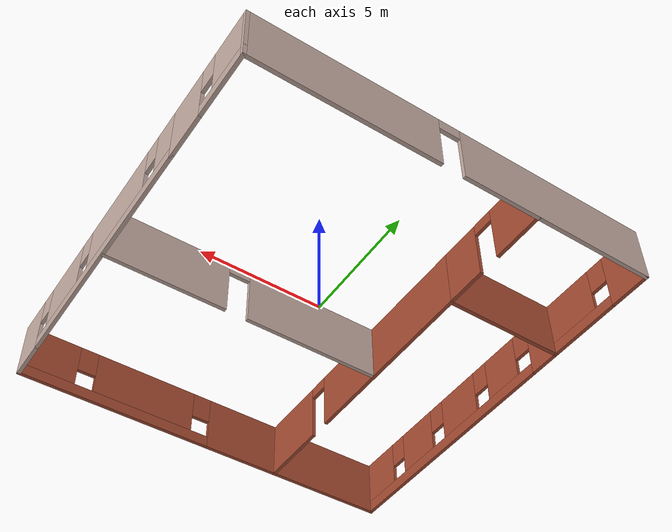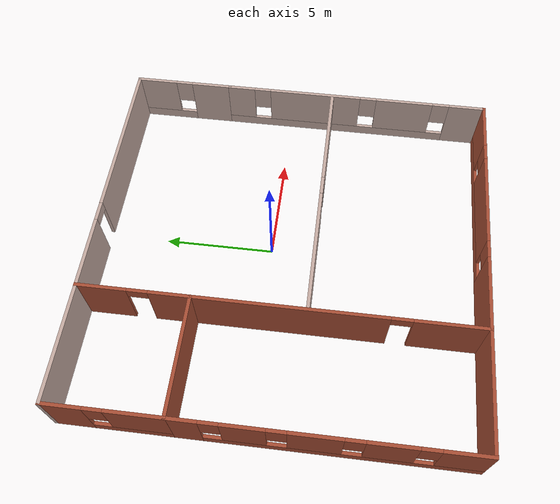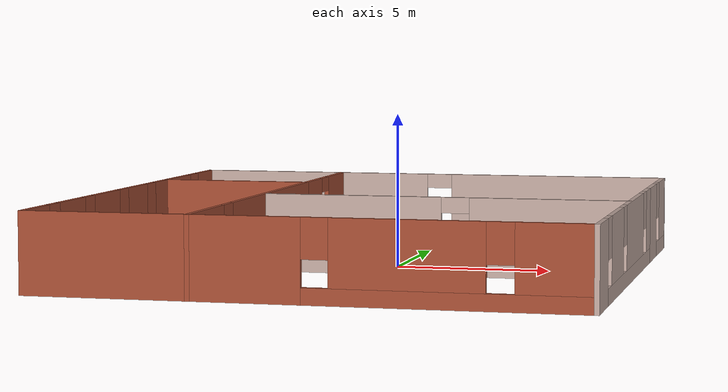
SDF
<?xml version='1.0'?>
<sdf version='1.6'>
  <model name='buildingone'>
    <pose frame=''>-0.602566 -0.893894 0 0 -0 0</pose>
    <link name='Wall_71'>
      <pose frame=''>-8.425 -2.425 0 0 0 -1.5708</pose>
      <visual name='Wall_71_Visual_0'>
        <pose frame=''>-5.57646 0 1.25 0 -0 0</pose>
        <geometry>
          <box>
            <size>1.34707 0.15 2.5</size>
          </box>
        </geometry>
        <material>
          <script>
            <uri>file://media/materials/scripts/gazebo.material</uri>
            <name>Gazebo/Bricks</name>
          </script>
          <ambient>1 1 1 1</ambient>
        </material>
        <meta>
          <layer>0</layer>
        </meta>
      </visual>
      <collision name='Wall_71_Collision_0'>
        <geometry>
          <box>
            <size>1.34707 0.15 2.5</size>
          </box>
        </geometry>
        <pose frame=''>-5.57646 0 1.25 0 -0 0</pose>
      </collision>
      <visual name='Wall_71_Visual_1'>
        <pose frame=''>0.673536 0 0.25 0 -0 0</pose>
        <geometry>
          <box>
            <size>11.1529 0.15 0.5</size>
          </box>
        </geometry>
        <material>
          <script>
            <uri>file://media/materials/scripts/gazebo.material</uri>
            <name>Gazebo/Bricks</name>
          </script>
          <ambient>1 1 1 1</ambient>
        </material>
        <meta>
          <layer>0</layer>
        </meta>
      </visual>
      <collision name='Wall_71_Collision_1'>
        <geometry>
          <box>
            <size>11.1529 0.15 0.5</size>
          </box>
        </geometry>
        <pose frame=''>0.673536 0 0.25 0 -0 0</pose>
      </collision>
      <visual name='Wall_71_Visual_2'>
        <pose frame=''>-3.21249 0 1.5 0 -0 0</pose>
        <geometry>
          <box>
            <size>1.78088 0.15 2</size>
          </box>
        </geometry>
        <material>
          <script>
            <uri>file://media/materials/scripts/gazebo.material</uri>
            <name>Gazebo/Bricks</name>
          </script>
          <ambient>1 1 1 1</ambient>
        </material>
        <meta>
          <layer>0</layer>
        </meta>
      </visual>
      <collision name='Wall_71_Collision_2'>
        <geometry>
          <box>
            <size>1.78088 0.15 2</size>
          </box>
        </geometry>
        <pose frame=''>-3.21249 0 1.5 0 -0 0</pose>
      </collision>
      <visual name='Wall_71_Visual_3'>
        <pose frame=''>-0.440981 0 1.5 0 -0 0</pose>
        <geometry>
          <box>
            <size>2.16214 0.15 2</size>
          </box>
        </geometry>
        <material>
          <script>
            <uri>file://media/materials/scripts/gazebo.material</uri>
            <name>Gazebo/Bricks</name>
          </script>
          <ambient>1 1 1 1</ambient>
        </material>
        <meta>
          <layer>0</layer>
        </meta>
      </visual>
      <collision name='Wall_71_Collision_3'>
        <geometry>
          <box>
            <size>2.16214 0.15 2</size>
          </box>
        </geometry>
        <pose frame=''>-0.440981 0 1.5 0 -0 0</pose>
      </collision>
      <visual name='Wall_71_Visual_4'>
        <pose frame=''>2.44784 0 1.5 0 -0 0</pose>
        <geometry>
          <box>
            <size>2.0155 0.15 2</size>
          </box>
        </geometry>
        <material>
          <script>
            <uri>file://media/materials/scripts/gazebo.material</uri>
            <name>Gazebo/Bricks</name>
          </script>
          <ambient>1 1 1 1</ambient>
        </material>
        <meta>
          <layer>0</layer>
        </meta>
      </visual>
      <collision name='Wall_71_Collision_4'>
        <geometry>
          <box>
            <size>2.0155 0.15 2</size>
          </box>
        </geometry>
        <pose frame=''>2.44784 0 1.5 0 -0 0</pose>
      </collision>
      <visual name='Wall_71_Visual_5'>
        <pose frame=''>5.25279 0 1.5 0 -0 0</pose>
        <geometry>
          <box>
            <size>1.99441 0.15 2</size>
          </box>
        </geometry>
        <material>
          <script>
            <uri>file://media/materials/scripts/gazebo.material</uri>
            <name>Gazebo/Bricks</name>
          </script>
          <ambient>1 1 1 1</ambient>
        </material>
        <meta>
          <layer>0</layer>
        </meta>
      </visual>
      <collision name='Wall_71_Collision_5'>
        <geometry>
          <box>
            <size>1.99441 0.15 2</size>
          </box>
        </geometry>
        <pose frame=''>5.25279 0 1.5 0 -0 0</pose>
      </collision>
      <visual name='Wall_71_Visual_6'>
        <pose frame=''>-4.50293 0 1.9 0 -0 0</pose>
        <geometry>
          <box>
            <size>0.8 0.15 1.2</size>
          </box>
        </geometry>
        <material>
          <script>
            <uri>file://media/materials/scripts/gazebo.material</uri>
            <name>Gazebo/Bricks</name>
          </script>
          <ambient>1 1 1 1</ambient>
        </material>
        <meta>
          <layer>0</layer>
        </meta>
      </visual>
      <collision name='Wall_71_Collision_6'>
        <geometry>
          <box>
            <size>0.8 0.15 1.2</size>
          </box>
        </geometry>
        <pose frame=''>-4.50293 0 1.9 0 -0 0</pose>
      </collision>
      <visual name='Wall_71_Visual_7'>
        <pose frame=''>-1.92205 0 1.9 0 -0 0</pose>
        <geometry>
          <box>
            <size>0.8 0.15 1.2</size>
          </box>
        </geometry>
        <material>
          <script>
            <uri>file://media/materials/scripts/gazebo.material</uri>
            <name>Gazebo/Bricks</name>
          </script>
          <ambient>1 1 1 1</ambient>
        </material>
        <meta>
          <layer>0</layer>
        </meta>
      </visual>
      <collision name='Wall_71_Collision_7'>
        <geometry>
          <box>
            <size>0.8 0.15 1.2</size>
          </box>
        </geometry>
        <pose frame=''>-1.92205 0 1.9 0 -0 0</pose>
      </collision>
      <visual name='Wall_71_Visual_8'>
        <pose frame=''>1.04009 0 1.9 0 -0 0</pose>
        <geometry>
          <box>
            <size>0.8 0.15 1.2</size>
          </box>
        </geometry>
        <material>
          <script>
            <uri>file://media/materials/scripts/gazebo.material</uri>
            <name>Gazebo/Bricks</name>
          </script>
          <ambient>1 1 1 1</ambient>
        </material>
        <meta>
          <layer>0</layer>
        </meta>
      </visual>
      <collision name='Wall_71_Collision_8'>
        <geometry>
          <box>
            <size>0.8 0.15 1.2</size>
          </box>
        </geometry>
        <pose frame=''>1.04009 0 1.9 0 -0 0</pose>
      </collision>
      <visual name='Wall_71_Visual_9'>
        <pose frame=''>3.85559 0 1.9 0 -0 0</pose>
        <geometry>
          <box>
            <size>0.8 0.15 1.2</size>
          </box>
        </geometry>
        <material>
          <script>
            <uri>file://media/materials/scripts/gazebo.material</uri>
            <name>Gazebo/Bricks</name>
          </script>
          <ambient>1 1 1 1</ambient>
        </material>
        <meta>
          <layer>0</layer>
        </meta>
      </visual>
      <collision name='Wall_71_Collision_9'>
        <geometry>
          <box>
            <size>0.8 0.15 1.2</size>
          </box>
        </geometry>
        <pose frame=''>3.85559 0 1.9 0 -0 0</pose>
      </collision>
    </link>
    <link name='Wall_72'>
      <pose frame=''>0 -8.6 0 0 -0 0</pose>
      <visual name='Wall_72_Visual_0'>
        <pose frame=''>-4.22455 0 1.25 0 -0 0</pose>
        <geometry>
          <box>
            <size>8.55091 0.15 2.5</size>
          </box>
        </geometry>
        <material>
          <script>
            <uri>file://media/materials/scripts/gazebo.material</uri>
            <name>Gazebo/Bricks</name>
          </script>
          <ambient>1 1 1 1</ambient>
        </material>
        <meta>
          <layer>0</layer>
        </meta>
      </visual>
      <collision name='Wall_72_Collision_0'>
        <geometry>
          <box>
            <size>8.55091 0.15 2.5</size>
          </box>
        </geometry>
        <pose frame=''>-4.22455 0 1.25 0 -0 0</pose>
      </collision>
      <visual name='Wall_72_Visual_1'>
        <pose frame=''>4.27545 0 0.25 0 -0 0</pose>
        <geometry>
          <box>
            <size>8.44909 0.15 0.5</size>
          </box>
        </geometry>
        <material>
          <script>
            <uri>file://media/materials/scripts/gazebo.material</uri>
            <name>Gazebo/Bricks</name>
          </script>
          <ambient>1 1 1 1</ambient>
        </material>
        <meta>
          <layer>0</layer>
        </meta>
      </visual>
      <collision name='Wall_72_Collision_1'>
        <geometry>
          <box>
            <size>8.44909 0.15 0.5</size>
          </box>
        </geometry>
        <pose frame=''>4.27545 0 0.25 0 -0 0</pose>
      </collision>
      <visual name='Wall_72_Visual_2'>
        <pose frame=''>3.10487 0 1.5 0 -0 0</pose>
        <geometry>
          <box>
            <size>4.50793 0.15 2</size>
          </box>
        </geometry>
        <material>
          <script>
            <uri>file://media/materials/scripts/gazebo.material</uri>
            <name>Gazebo/Bricks</name>
          </script>
          <ambient>1 1 1 1</ambient>
        </material>
        <meta>
          <layer>0</layer>
        </meta>
      </visual>
      <collision name='Wall_72_Collision_2'>
        <geometry>
          <box>
            <size>4.50793 0.15 2</size>
          </box>
        </geometry>
        <pose frame=''>3.10487 0 1.5 0 -0 0</pose>
      </collision>
      <visual name='Wall_72_Visual_3'>
        <pose frame=''>7.32942 0 1.5 0 -0 0</pose>
        <geometry>
          <box>
            <size>2.34117 0.15 2</size>
          </box>
        </geometry>
        <material>
          <script>
            <uri>file://media/materials/scripts/gazebo.material</uri>
            <name>Gazebo/Bricks</name>
          </script>
          <ambient>1 1 1 1</ambient>
        </material>
        <meta>
          <layer>0</layer>
        </meta>
      </visual>
      <collision name='Wall_72_Collision_3'>
        <geometry>
          <box>
            <size>2.34117 0.15 2</size>
          </box>
        </geometry>
        <pose frame=''>7.32942 0 1.5 0 -0 0</pose>
      </collision>
      <visual name='Wall_72_Visual_4'>
        <pose frame=''>0.450905 0 1.9 0 -0 0</pose>
        <geometry>
          <box>
            <size>0.8 0.15 1.2</size>
          </box>
        </geometry>
        <material>
          <script>
            <uri>file://media/materials/scripts/gazebo.material</uri>
            <name>Gazebo/Bricks</name>
          </script>
          <ambient>1 1 1 1</ambient>
        </material>
        <meta>
          <layer>0</layer>
        </meta>
      </visual>
      <collision name='Wall_72_Collision_4'>
        <geometry>
          <box>
            <size>0.8 0.15 1.2</size>
          </box>
        </geometry>
        <pose frame=''>0.450905 0 1.9 0 -0 0</pose>
      </collision>
      <visual name='Wall_72_Visual_5'>
        <pose frame=''>5.75883 0 1.9 0 -0 0</pose>
        <geometry>
          <box>
            <size>0.8 0.15 1.2</size>
          </box>
        </geometry>
        <material>
          <script>
            <uri>file://media/materials/scripts/gazebo.material</uri>
            <name>Gazebo/Bricks</name>
          </script>
          <ambient>1 1 1 1</ambient>
        </material>
        <meta>
          <layer>0</layer>
        </meta>
      </visual>
      <collision name='Wall_72_Collision_5'>
        <geometry>
          <box>
            <size>0.8 0.15 1.2</size>
          </box>
        </geometry>
        <pose frame=''>5.75883 0 1.9 0 -0 0</pose>
      </collision>
    </link>
    <link name='Wall_73'>
      <pose frame=''>8.425 -2.3 0 0 -0 1.5708</pose>
      <visual name='Wall_73_Visual_0'>
        <pose frame=''>-5.48571 0 1.25 0 -0 0</pose>
        <geometry>
          <box>
            <size>1.77858 0.15 2.5</size>
          </box>
        </geometry>
        <material>
          <script>
            <uri>file://media/materials/scripts/gazebo.material</uri>
            <name>Gazebo/Grey</name>
          </script>
          <ambient>0.760784 0.662745 0.627451 1</ambient>
        </material>
        <meta>
          <layer>0</layer>
        </meta>
      </visual>
      <collision name='Wall_73_Collision_0'>
        <geometry>
          <box>
            <size>1.77858 0.15 2.5</size>
          </box>
        </geometry>
        <pose frame=''>-5.48571 0 1.25 0 -0 0</pose>
      </collision>
      <visual name='Wall_73_Visual_1'>
        <pose frame=''>0.889291 0 0.25 0 -0 0</pose>
        <geometry>
          <box>
            <size>10.9714 0.15 0.5</size>
          </box>
        </geometry>
        <material>
          <script>
            <uri>file://media/materials/scripts/gazebo.material</uri>
            <name>Gazebo/Grey</name>
          </script>
          <ambient>0.760784 0.662745 0.627451 1</ambient>
        </material>
        <meta>
          <layer>0</layer>
        </meta>
      </visual>
      <collision name='Wall_73_Collision_1'>
        <geometry>
          <box>
            <size>10.9714 0.15 0.5</size>
          </box>
        </geometry>
        <pose frame=''>0.889291 0 0.25 0 -0 0</pose>
      </collision>
      <visual name='Wall_73_Visual_2'>
        <pose frame=''>-2.41224 0 1.5 0 -0 0</pose>
        <geometry>
          <box>
            <size>2.76835 0.15 2</size>
          </box>
        </geometry>
        <material>
          <script>
            <uri>file://media/materials/scripts/gazebo.material</uri>
            <name>Gazebo/Grey</name>
          </script>
          <ambient>0.760784 0.662745 0.627451 1</ambient>
        </material>
        <meta>
          <layer>0</layer>
        </meta>
      </visual>
      <collision name='Wall_73_Collision_2'>
        <geometry>
          <box>
            <size>2.76835 0.15 2</size>
          </box>
        </geometry>
        <pose frame=''>-2.41224 0 1.5 0 -0 0</pose>
      </collision>
      <visual name='Wall_73_Visual_3'>
        <pose frame=''>2.0036 0 1.5 0 -0 0</pose>
        <geometry>
          <box>
            <size>4.46332 0.15 2</size>
          </box>
        </geometry>
        <material>
          <script>
            <uri>file://media/materials/scripts/gazebo.material</uri>
            <name>Gazebo/Grey</name>
          </script>
          <ambient>0.760784 0.662745 0.627451 1</ambient>
        </material>
        <meta>
          <layer>0</layer>
        </meta>
      </visual>
      <collision name='Wall_73_Collision_3'>
        <geometry>
          <box>
            <size>4.46332 0.15 2</size>
          </box>
        </geometry>
        <pose frame=''>2.0036 0 1.5 0 -0 0</pose>
      </collision>
      <visual name='Wall_73_Visual_4'>
        <pose frame=''>5.70513 0 1.5 0 -0 0</pose>
        <geometry>
          <box>
            <size>1.33974 0.15 2</size>
          </box>
        </geometry>
        <material>
          <script>
            <uri>file://media/materials/scripts/gazebo.material</uri>
            <name>Gazebo/Grey</name>
          </script>
          <ambient>0.760784 0.662745 0.627451 1</ambient>
        </material>
        <meta>
          <layer>0</layer>
        </meta>
      </visual>
      <collision name='Wall_73_Collision_4'>
        <geometry>
          <box>
            <size>1.33974 0.15 2</size>
          </box>
        </geometry>
        <pose frame=''>5.70513 0 1.5 0 -0 0</pose>
      </collision>
      <visual name='Wall_73_Visual_5'>
        <pose frame=''>-4.19642 0 1.9 0 -0 0</pose>
        <geometry>
          <box>
            <size>0.8 0.15 1.2</size>
          </box>
        </geometry>
        <material>
          <script>
            <uri>file://media/materials/scripts/gazebo.material</uri>
            <name>Gazebo/Grey</name>
          </script>
          <ambient>0.760784 0.662745 0.627451 1</ambient>
        </material>
        <meta>
          <layer>0</layer>
        </meta>
      </visual>
      <collision name='Wall_73_Collision_5'>
        <geometry>
          <box>
            <size>0.8 0.15 1.2</size>
          </box>
        </geometry>
        <pose frame=''>-4.19642 0 1.9 0 -0 0</pose>
      </collision>
      <visual name='Wall_73_Visual_6'>
        <pose frame=''>-0.628064 0 1.9 0 -0 0</pose>
        <geometry>
          <box>
            <size>0.8 0.15 1.2</size>
          </box>
        </geometry>
        <material>
          <script>
            <uri>file://media/materials/scripts/gazebo.material</uri>
            <name>Gazebo/Grey</name>
          </script>
          <ambient>0.760784 0.662745 0.627451 1</ambient>
        </material>
        <meta>
          <layer>0</layer>
        </meta>
      </visual>
      <collision name='Wall_73_Collision_6'>
        <geometry>
          <box>
            <size>0.8 0.15 1.2</size>
          </box>
        </geometry>
        <pose frame=''>-0.628064 0 1.9 0 -0 0</pose>
      </collision>
      <visual name='Wall_73_Visual_7'>
        <pose frame=''>4.63526 0 1.9 0 -0 0</pose>
        <geometry>
          <box>
            <size>0.8 0.15 1.2</size>
          </box>
        </geometry>
        <material>
          <script>
            <uri>file://media/materials/scripts/gazebo.material</uri>
            <name>Gazebo/Grey</name>
          </script>
          <ambient>0.760784 0.662745 0.627451 1</ambient>
        </material>
        <meta>
          <layer>0</layer>
        </meta>
      </visual>
      <collision name='Wall_73_Collision_7'>
        <geometry>
          <box>
            <size>0.8 0.15 1.2</size>
          </box>
        </geometry>
        <pose frame=''>4.63526 0 1.9 0 -0 0</pose>
      </collision>
    </link>
    <link name='Wall_74'>
      <pose frame=''>8.425 6.3 0 0 -0 1.5708</pose>
      <visual name='Wall_74_Visual_0'>
        <pose frame=''>-1.38497 0 1.25 0 -0 0</pose>
        <geometry>
          <box>
            <size>1.98005 0.15 2.5</size>
          </box>
        </geometry>
        <material>
          <script>
            <uri>file://media/materials/scripts/gazebo.material</uri>
            <name>Gazebo/Grey</name>
          </script>
          <ambient>0.760784 0.662745 0.627451 1</ambient>
        </material>
        <meta>
          <layer>0</layer>
        </meta>
      </visual>
      <collision name='Wall_74_Collision_0'>
        <geometry>
          <box>
            <size>1.98005 0.15 2.5</size>
          </box>
        </geometry>
        <pose frame=''>-1.38497 0 1.25 0 -0 0</pose>
      </collision>
      <visual name='Wall_74_Visual_1'>
        <pose frame=''>0.990026 0 0.25 0 -0 0</pose>
        <geometry>
          <box>
            <size>2.76995 0.15 0.5</size>
          </box>
        </geometry>
        <material>
          <script>
            <uri>file://media/materials/scripts/gazebo.material</uri>
            <name>Gazebo/Grey</name>
          </script>
          <ambient>0.760784 0.662745 0.627451 1</ambient>
        </material>
        <meta>
          <layer>0</layer>
        </meta>
      </visual>
      <collision name='Wall_74_Collision_1'>
        <geometry>
          <box>
            <size>2.76995 0.15 0.5</size>
          </box>
        </geometry>
        <pose frame=''>0.990026 0 0.25 0 -0 0</pose>
      </collision>
      <visual name='Wall_74_Visual_2'>
        <pose frame=''>1.39003 0 1.5 0 -0 0</pose>
        <geometry>
          <box>
            <size>1.96995 0.15 2</size>
          </box>
        </geometry>
        <material>
          <script>
            <uri>file://media/materials/scripts/gazebo.material</uri>
            <name>Gazebo/Grey</name>
          </script>
          <ambient>0.760784 0.662745 0.627451 1</ambient>
        </material>
        <meta>
          <layer>0</layer>
        </meta>
      </visual>
      <collision name='Wall_74_Collision_2'>
        <geometry>
          <box>
            <size>1.96995 0.15 2</size>
          </box>
        </geometry>
        <pose frame=''>1.39003 0 1.5 0 -0 0</pose>
      </collision>
      <visual name='Wall_74_Visual_3'>
        <pose frame=''>0.005052 0 1.9 0 -0 0</pose>
        <geometry>
          <box>
            <size>0.8 0.15 1.2</size>
          </box>
        </geometry>
        <material>
          <script>
            <uri>file://media/materials/scripts/gazebo.material</uri>
            <name>Gazebo/Grey</name>
          </script>
          <ambient>0.760784 0.662745 0.627451 1</ambient>
        </material>
        <meta>
          <layer>0</layer>
        </meta>
      </visual>
      <collision name='Wall_74_Collision_3'>
        <geometry>
          <box>
            <size>0.8 0.15 1.2</size>
          </box>
        </geometry>
        <pose frame=''>0.005052 0 1.9 0 -0 0</pose>
      </collision>
    </link>
    <link name='Wall_75'>
      <pose frame=''>0 8.6 0 0 -0 3.14159</pose>
      <visual name='Wall_75_Visual_0'>
        <pose frame=''>-4.65585 0 1.25 0 -0 0</pose>
        <geometry>
          <box>
            <size>7.6883 0.15 2.5</size>
          </box>
        </geometry>
        <material>
          <script>
            <uri>file://media/materials/scripts/gazebo.material</uri>
            <name>Gazebo/Grey</name>
          </script>
          <ambient>0.760784 0.662745 0.627451 1</ambient>
        </material>
        <meta>
          <layer>0</layer>
        </meta>
      </visual>
      <collision name='Wall_75_Collision_0'>
        <geometry>
          <box>
            <size>7.6883 0.15 2.5</size>
          </box>
        </geometry>
        <pose frame=''>-4.65585 0 1.25 0 -0 0</pose>
      </collision>
      <visual name='Wall_75_Visual_1'>
        <pose frame=''>4.29415 0 1.25 0 -0 0</pose>
        <geometry>
          <box>
            <size>8.4117 0.15 2.5</size>
          </box>
        </geometry>
        <material>
          <script>
            <uri>file://media/materials/scripts/gazebo.material</uri>
            <name>Gazebo/Grey</name>
          </script>
          <ambient>0.760784 0.662745 0.627451 1</ambient>
        </material>
        <meta>
          <layer>0</layer>
        </meta>
      </visual>
      <collision name='Wall_75_Collision_1'>
        <geometry>
          <box>
            <size>8.4117 0.15 2.5</size>
          </box>
        </geometry>
        <pose frame=''>4.29415 0 1.25 0 -0 0</pose>
      </collision>
      <visual name='Wall_75_Visual_2'>
        <pose frame=''>-0.361696 0 2.25 0 -0 0</pose>
        <geometry>
          <box>
            <size>0.9 0.15 0.5</size>
          </box>
        </geometry>
        <material>
          <script>
            <uri>file://media/materials/scripts/gazebo.material</uri>
            <name>Gazebo/Grey</name>
          </script>
          <ambient>0.760784 0.662745 0.627451 1</ambient>
        </material>
        <meta>
          <layer>0</layer>
        </meta>
      </visual>
      <collision name='Wall_75_Collision_2'>
        <geometry>
          <box>
            <size>0.9 0.15 0.5</size>
          </box>
        </geometry>
        <pose frame=''>-0.361696 0 2.25 0 -0 0</pose>
      </collision>
    </link>
    <link name='Wall_76'>
      <pose frame=''>-8.425 6.175 0 0 0 -1.5708</pose>
      <visual name='Wall_76_Visual_0'>
        <pose frame=''>-1.62654 0 1.25 0 -0 0</pose>
        <geometry>
          <box>
            <size>1.74693 0.15 2.5</size>
          </box>
        </geometry>
        <material>
          <script>
            <uri>file://media/materials/scripts/gazebo.material</uri>
            <name>Gazebo/Bricks</name>
          </script>
          <ambient>1 1 1 1</ambient>
        </material>
        <meta>
          <layer>0</layer>
        </meta>
      </visual>
      <collision name='Wall_76_Collision_0'>
        <geometry>
          <box>
            <size>1.74693 0.15 2.5</size>
          </box>
        </geometry>
        <pose frame=''>-1.62654 0 1.25 0 -0 0</pose>
      </collision>
      <visual name='Wall_76_Visual_1'>
        <pose frame=''>0.873463 0 0.25 0 -0 0</pose>
        <geometry>
          <box>
            <size>3.25307 0.15 0.5</size>
          </box>
        </geometry>
        <material>
          <script>
            <uri>file://media/materials/scripts/gazebo.material</uri>
            <name>Gazebo/Bricks</name>
          </script>
          <ambient>1 1 1 1</ambient>
        </material>
        <meta>
          <layer>0</layer>
        </meta>
      </visual>
      <collision name='Wall_76_Collision_1'>
        <geometry>
          <box>
            <size>3.25307 0.15 0.5</size>
          </box>
        </geometry>
        <pose frame=''>0.873463 0 0.25 0 -0 0</pose>
      </collision>
      <visual name='Wall_76_Visual_2'>
        <pose frame=''>1.27346 0 1.5 0 -0 0</pose>
        <geometry>
          <box>
            <size>2.45307 0.15 2</size>
          </box>
        </geometry>
        <material>
          <script>
            <uri>file://media/materials/scripts/gazebo.material</uri>
            <name>Gazebo/Bricks</name>
          </script>
          <ambient>1 1 1 1</ambient>
        </material>
        <meta>
          <layer>0</layer>
        </meta>
      </visual>
      <collision name='Wall_76_Collision_2'>
        <geometry>
          <box>
            <size>2.45307 0.15 2</size>
          </box>
        </geometry>
        <pose frame=''>1.27346 0 1.5 0 -0 0</pose>
      </collision>
      <visual name='Wall_76_Visual_3'>
        <pose frame=''>-0.353074 0 1.9 0 -0 0</pose>
        <geometry>
          <box>
            <size>0.8 0.15 1.2</size>
          </box>
        </geometry>
        <material>
          <script>
            <uri>file://media/materials/scripts/gazebo.material</uri>
            <name>Gazebo/Bricks</name>
          </script>
          <ambient>1 1 1 1</ambient>
        </material>
        <meta>
          <layer>0</layer>
        </meta>
      </visual>
      <collision name='Wall_76_Collision_3'>
        <geometry>
          <box>
            <size>0.8 0.15 1.2</size>
          </box>
        </geometry>
        <pose frame=''>-0.353074 0 1.9 0 -0 0</pose>
      </collision>
    </link>
    <link name='Wall_77'>
      <collision name='Wall_77_Collision'>
        <geometry>
          <box>
            <size>5.25 0.15 2.5</size>
          </box>
        </geometry>
        <pose frame=''>0 0 1.25 0 -0 0</pose>
      </collision>
      <visual name='Wall_77_Visual'>
        <pose frame=''>0 0 1.25 0 -0 0</pose>
        <geometry>
          <box>
            <size>5.25 0.15 2.5</size>
          </box>
        </geometry>
        <material>
          <script>
            <uri>file://media/materials/scripts/gazebo.material</uri>
            <name>Gazebo/Bricks</name>
          </script>
          <ambient>1 1 1 1</ambient>
        </material>
        <meta>
          <layer>0</layer>
        </meta>
      </visual>
      <pose frame=''>-5.875 3.75 0 0 -0 0</pose>
    </link>
    <link name='Wall_78'>
      <pose frame=''>-3.325 6.175 0 0 -0 1.5708</pose>
      <visual name='Wall_78_Visual_0'>
        <pose frame=''>-1.56609 0 1.25 0 -0 0</pose>
        <geometry>
          <box>
            <size>1.86782 0.15 2.5</size>
          </box>
        </geometry>
        <material>
          <script>
            <uri>file://media/materials/scripts/gazebo.material</uri>
            <name>Gazebo/Bricks</name>
          </script>
          <ambient>1 1 1 1</ambient>
        </material>
        <meta>
          <layer>0</layer>
        </meta>
      </visual>
      <collision name='Wall_78_Collision_0'>
        <geometry>
          <box>
            <size>1.86782 0.15 2.5</size>
          </box>
        </geometry>
        <pose frame=''>-1.56609 0 1.25 0 -0 0</pose>
      </collision>
      <visual name='Wall_78_Visual_1'>
        <pose frame=''>1.38391 0 1.25 0 -0 0</pose>
        <geometry>
          <box>
            <size>2.23218 0.15 2.5</size>
          </box>
        </geometry>
        <material>
          <script>
            <uri>file://media/materials/scripts/gazebo.material</uri>
            <name>Gazebo/Bricks</name>
          </script>
          <ambient>1 1 1 1</ambient>
        </material>
        <meta>
          <layer>0</layer>
        </meta>
      </visual>
      <collision name='Wall_78_Collision_1'>
        <geometry>
          <box>
            <size>2.23218 0.15 2.5</size>
          </box>
        </geometry>
        <pose frame=''>1.38391 0 1.25 0 -0 0</pose>
      </collision>
      <visual name='Wall_78_Visual_2'>
        <pose frame=''>-0.182179 0 2.25 0 -0 0</pose>
        <geometry>
          <box>
            <size>0.9 0.15 0.5</size>
          </box>
        </geometry>
        <material>
          <script>
            <uri>file://media/materials/scripts/gazebo.material</uri>
            <name>Gazebo/Bricks</name>
          </script>
          <ambient>1 1 1 1</ambient>
        </material>
        <meta>
          <layer>0</layer>
        </meta>
      </visual>
      <collision name='Wall_78_Collision_2'>
        <geometry>
          <box>
            <size>0.9 0.15 0.5</size>
          </box>
        </geometry>
        <pose frame=''>-0.182179 0 2.25 0 -0 0</pose>
      </collision>
    </link>
    <link name='Wall_81'>
      <pose frame=''>-3.325 -2.425 0 0 0 -1.5708</pose>
      <visual name='Wall_81_Visual_0'>
        <pose frame=''>-2.05026 0 1.25 0 -0 0</pose>
        <geometry>
          <box>
            <size>8.39947 0.15 2.5</size>
          </box>
        </geometry>
        <material>
          <script>
            <uri>file://media/materials/scripts/gazebo.material</uri>
            <name>Gazebo/Bricks</name>
          </script>
          <ambient>1 1 1 1</ambient>
        </material>
        <meta>
          <layer>0</layer>
        </meta>
      </visual>
      <collision name='Wall_81_Collision_0'>
        <geometry>
          <box>
            <size>8.39947 0.15 2.5</size>
          </box>
        </geometry>
        <pose frame=''>-2.05026 0 1.25 0 -0 0</pose>
      </collision>
      <visual name='Wall_81_Visual_1'>
        <pose frame=''>4.64974 0 1.25 0 -0 0</pose>
        <geometry>
          <box>
            <size>3.20053 0.15 2.5</size>
          </box>
        </geometry>
        <material>
          <script>
            <uri>file://media/materials/scripts/gazebo.material</uri>
            <name>Gazebo/Bricks</name>
          </script>
          <ambient>1 1 1 1</ambient>
        </material>
        <meta>
          <layer>0</layer>
        </meta>
      </visual>
      <collision name='Wall_81_Collision_1'>
        <geometry>
          <box>
            <size>3.20053 0.15 2.5</size>
          </box>
        </geometry>
        <pose frame=''>4.64974 0 1.25 0 -0 0</pose>
      </collision>
      <visual name='Wall_81_Visual_2'>
        <pose frame=''>2.59947 0 2.25 0 -0 0</pose>
        <geometry>
          <box>
            <size>0.9 0.15 0.5</size>
          </box>
        </geometry>
        <material>
          <script>
            <uri>file://media/materials/scripts/gazebo.material</uri>
            <name>Gazebo/Bricks</name>
          </script>
          <ambient>1 1 1 1</ambient>
        </material>
        <meta>
          <layer>0</layer>
        </meta>
      </visual>
      <collision name='Wall_81_Collision_2'>
        <geometry>
          <box>
            <size>0.9 0.15 0.5</size>
          </box>
        </geometry>
        <pose frame=''>2.59947 0 2.25 0 -0 0</pose>
      </collision>
    </link>
    <link name='Wall_83'>
      <pose frame=''>2.59035 -1.15052 0 0 -0 0</pose>
      <visual name='Wall_83_Visual_0'>
        <pose frame=''>-2.9833 0 1.25 0 -0 0</pose>
        <geometry>
          <box>
            <size>5.7834 0.15 2.5</size>
          </box>
        </geometry>
        <material>
          <script>
            <uri>file://media/materials/scripts/gazebo.material</uri>
            <name>Gazebo/Grey</name>
          </script>
          <ambient>0.760784 0.662745 0.627451 1</ambient>
        </material>
        <meta>
          <layer>0</layer>
        </meta>
      </visual>
      <collision name='Wall_83_Collision_0'>
        <geometry>
          <box>
            <size>5.7834 0.15 2.5</size>
          </box>
        </geometry>
        <pose frame=''>-2.9833 0 1.25 0 -0 0</pose>
      </collision>
      <visual name='Wall_83_Visual_1'>
        <pose frame=''>3.3417 0 1.25 0 -0 0</pose>
        <geometry>
          <box>
            <size>5.0666 0.15 2.5</size>
          </box>
        </geometry>
        <material>
          <script>
            <uri>file://media/materials/scripts/gazebo.material</uri>
            <name>Gazebo/Grey</name>
          </script>
          <ambient>0.760784 0.662745 0.627451 1</ambient>
        </material>
        <meta>
          <layer>0</layer>
        </meta>
      </visual>
      <collision name='Wall_83_Collision_1'>
        <geometry>
          <box>
            <size>5.0666 0.15 2.5</size>
          </box>
        </geometry>
        <pose frame=''>3.3417 0 1.25 0 -0 0</pose>
      </collision>
      <visual name='Wall_83_Visual_2'>
        <pose frame=''>0.358404 0 2.25 0 -0 0</pose>
        <geometry>
          <box>
            <size>0.9 0.15 0.5</size>
          </box>
        </geometry>
        <material>
          <script>
            <uri>file://media/materials/scripts/gazebo.material</uri>
            <name>Gazebo/Grey</name>
          </script>
          <ambient>0.760784 0.662745 0.627451 1</ambient>
        </material>
        <meta>
          <layer>0</layer>
        </meta>
      </visual>
      <collision name='Wall_83_Collision_2'>
        <geometry>
          <box>
            <size>0.9 0.15 0.5</size>
          </box>
        </geometry>
        <pose frame=''>0.358404 0 2.25 0 -0 0</pose>
      </collision>
    </link>
    <static>1</static>
  </model>
</sdf>
